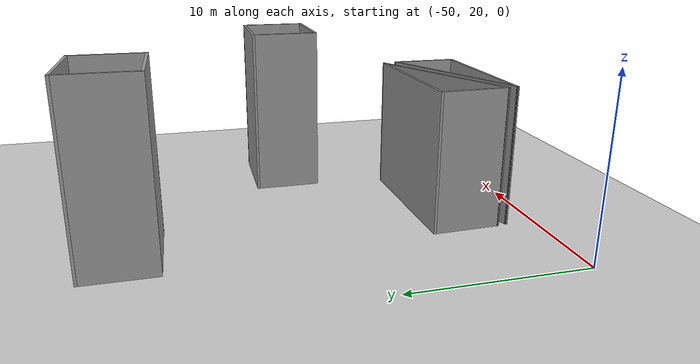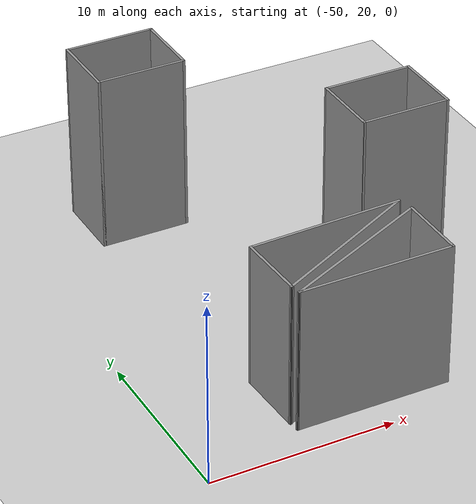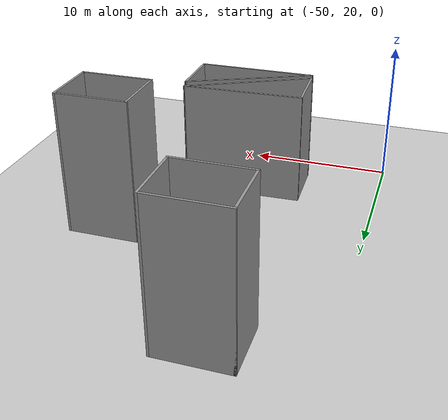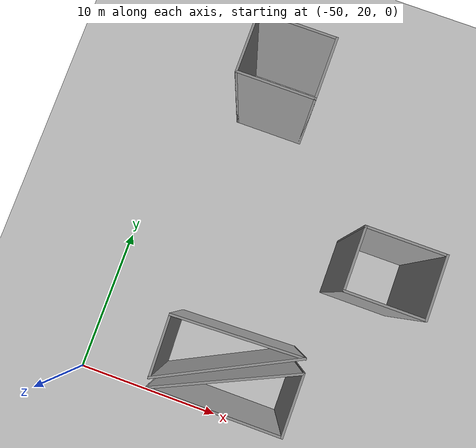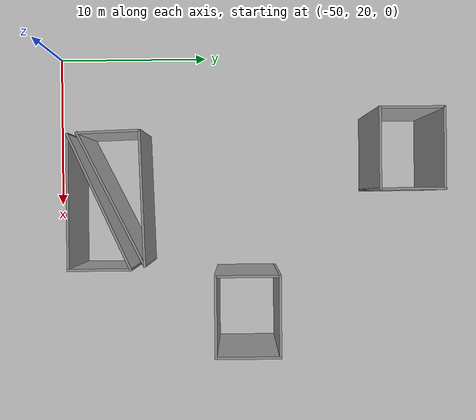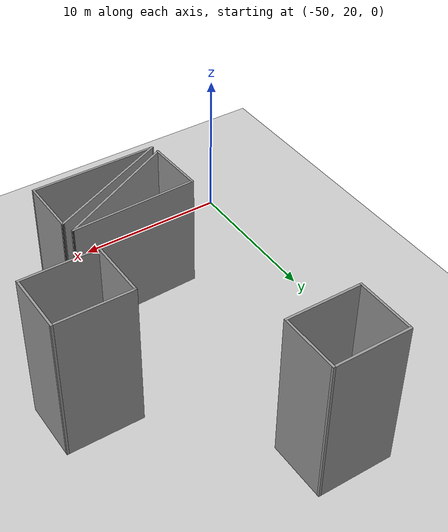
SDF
<sdf version="1.7">
 <world name="default">
  <model name="ground_plane">
   <static>1</static>
   <link name="link">
    <collision name="collision">
     <geometry><plane><normal>0 0 1</normal><size>100 100</size></plane></geometry>
     <surface><friction><ode><mu>100</mu><mu2>50</mu2></ode></friction></surface>
    </collision>
    <visual name="visual">
     <cast_shadows>0</cast_shadows>
     <geometry><plane><normal>0 0 1</normal><size>100 100</size></plane></geometry>
     <material>
      <script><uri>file://media/materials/scripts/gazebo.material</uri><name>Gazebo/Grey</name></script>
     </material>
    </visual>
   </link>
  </model>
  <model name="building2_clone_0">
   <link name="Wall_20">
    <pose>4.175 -1.60474 0 0 0 -1.5708</pose>
    <inertial>
     <mass>1</mass>
     <inertia><ixx>1</ixx><ixy>0</ixy><ixz>0</ixz><iyy>1</iyy><iyz>0</iyz><izz>1</izz></inertia>
    </inertial>
    <visual name="Wall_20_Visual">
     <pose>0 0 4 0 -0 0</pose>
     <geometry><box><size>4 0.15 8</size></box></geometry>
     <material>
      <script><uri>file://media/materials/scripts/gazebo.material</uri><name>Gazebo/Grey</name></script>
      <ambient>0.5 0.5 0.5 1</ambient>
      <shader type="pixel"><normal_map>__default__</normal_map></shader>
      <diffuse>0.5 0.5 0.5 1</diffuse>
      <specular>0.5 0.01 0.5 1</specular>
      <emissive>0 0 0 1</emissive>
     </material>
     <meta><layer>0</layer></meta>
    </visual>
    <collision name="Wall_20_Collision">
     <pose>0 0 4 0 -0 0</pose>
     <geometry><box><size>4 0.15 8</size></box></geometry>
     <surface>
      <friction>
       <ode><mu>1</mu><mu2>1</mu2><fdir1>0 0 0</fdir1><slip1>0</slip1><slip2>0</slip2></ode>
       <torsional>
        <coefficient>1</coefficient>
        <patch_radius>0</patch_radius>
        <surface_radius>0</surface_radius>
        <use_patch_radius>1</use_patch_radius>
        <ode><slip>0</slip></ode>
       </torsional>
      </friction>
      <bounce><restitution_coefficient>0</restitution_coefficient><threshold>1e+06</threshold></bounce>
      <contact>
       <collide_without_contact>0</collide_without_contact>
       <collide_without_contact_bitmask>1</collide_without_contact_bitmask>
       <collide_bitmask>1</collide_bitmask>
       <ode>
        <soft_cfm>0</soft_cfm>
        <soft_erp>0.2</soft_erp>
        <kp>1e+13</kp>
        <kd>1</kd>
        <max_vel>0.01</max_vel>
        <min_depth>0</min_depth>
       </ode>
       <bullet>
        <split_impulse>1</split_impulse>
        <split_impulse_penetration_threshold>-0.01</split_impulse_penetration_threshold>
        <soft_cfm>0</soft_cfm>
        <soft_erp>0.2</soft_erp>
        <kp>1e+13</kp>
        <kd>1</kd>
       </bullet>
      </contact>
     </surface>
    </collision>
   </link>
   <link name="Wall_21">
    <pose>0 -3.52974 0 0 -0 3.14159</pose>
    <inertial>
     <mass>1</mass>
     <inertia><ixx>1</ixx><ixy>0</ixy><ixz>0</ixz><iyy>1</iyy><iyz>0</iyz><izz>1</izz></inertia>
    </inertial>
    <visual name="Wall_21_Visual">
     <pose>0 0 4 0 -0 0</pose>
     <geometry><box><size>8.5 0.15 8</size></box></geometry>
     <material>
      <script><uri>file://media/materials/scripts/gazebo.material</uri><name>Gazebo/Grey</name></script>
      <ambient>0.5 0.5 0.5 1</ambient>
      <shader type="pixel"><normal_map>__default__</normal_map></shader>
      <diffuse>0.5 0.5 0.5 1</diffuse>
      <specular>0.5 0.5 0.5 1</specular>
      <emissive>0 0 0 1</emissive>
     </material>
     <meta><layer>0</layer></meta>
    </visual>
    <collision name="Wall_21_Collision">
     <pose>0 0 4 0 -0 0</pose>
     <geometry><box><size>8.5 0.15 8</size></box></geometry>
     <surface>
      <friction>
       <ode><mu>1</mu><mu2>1</mu2><fdir1>0 0 0</fdir1><slip1>0</slip1><slip2>0</slip2></ode>
       <torsional>
        <coefficient>1</coefficient>
        <patch_radius>0</patch_radius>
        <surface_radius>0</surface_radius>
        <use_patch_radius>1</use_patch_radius>
        <ode><slip>0</slip></ode>
       </torsional>
      </friction>
      <bounce><restitution_coefficient>0</restitution_coefficient><threshold>1e+06</threshold></bounce>
      <contact>
       <collide_without_contact>0</collide_without_contact>
       <collide_without_contact_bitmask>1</collide_without_contact_bitmask>
       <collide_bitmask>1</collide_bitmask>
       <ode>
        <soft_cfm>0</soft_cfm>
        <soft_erp>0.2</soft_erp>
        <kp>1e+13</kp>
        <kd>1</kd>
        <max_vel>0.01</max_vel>
        <min_depth>0</min_depth>
       </ode>
       <bullet>
        <split_impulse>1</split_impulse>
        <split_impulse_penetration_threshold>-0.01</split_impulse_penetration_threshold>
        <soft_cfm>0</soft_cfm>
        <soft_erp>0.2</soft_erp>
        <kp>1e+13</kp>
        <kd>1</kd>
       </bullet>
      </contact>
     </surface>
    </collision>
   </link>
   <link name="Wall_24">
    <pose>0 -1.60474 0 0 -0 0.432028</pose>
    <inertial>
     <mass>1</mass>
     <inertia><ixx>1</ixx><ixy>0</ixy><ixz>0</ixz><iyy>1</iyy><iyz>0</iyz><izz>1</izz></inertia>
    </inertial>
    <visual name="Wall_24_Visual">
     <pose>0 0 4 0 -0 0</pose>
     <geometry><box><size>9.34484 0.15 8</size></box></geometry>
     <material>
      <script><uri>file://media/materials/scripts/gazebo.material</uri><name>Gazebo/Grey</name></script>
      <ambient>0.5 0.5 0.5 1</ambient>
      <shader type="pixel"><normal_map>__default__</normal_map></shader>
      <diffuse>0.5 0.5 0.5 1</diffuse>
      <specular>0.5 0.5 0.5 1</specular>
      <emissive>0 0 0 1</emissive>
     </material>
     <meta><layer>0</layer></meta>
    </visual>
    <collision name="Wall_24_Collision">
     <pose>0 0 4 0 -0 0</pose>
     <geometry><box><size>9.34484 0.15 8</size></box></geometry>
     <surface>
      <friction>
       <ode><mu>1</mu><mu2>1</mu2><fdir1>0 0 0</fdir1><slip1>0</slip1><slip2>0</slip2></ode>
       <torsional>
        <coefficient>1</coefficient>
        <patch_radius>0</patch_radius>
        <surface_radius>0</surface_radius>
        <use_patch_radius>1</use_patch_radius>
        <ode><slip>0</slip></ode>
       </torsional>
      </friction>
      <bounce><restitution_coefficient>0</restitution_coefficient><threshold>1e+06</threshold></bounce>
      <contact>
       <collide_without_contact>0</collide_without_contact>
       <collide_without_contact_bitmask>1</collide_without_contact_bitmask>
       <collide_bitmask>1</collide_bitmask>
       <ode>
        <soft_cfm>0</soft_cfm>
        <soft_erp>0.2</soft_erp>
        <kp>1e+13</kp>
        <kd>1</kd>
        <max_vel>0.01</max_vel>
        <min_depth>0</min_depth>
       </ode>
       <bullet>
        <split_impulse>1</split_impulse>
        <split_impulse_penetration_threshold>-0.01</split_impulse_penetration_threshold>
        <soft_cfm>0</soft_cfm>
        <soft_erp>0.2</soft_erp>
        <kp>1e+13</kp>
        <kd>1</kd>
       </bullet>
      </contact>
     </surface>
    </collision>
   </link>
   <static>1</static>
   <pose>-40.1635 25.222 0 0 -0 0</pose>
  </model>
  <model name="building2_clone_0_clone_0">
   <link name="Wall_20">
    <pose>4.175 -1.60474 0 0 0 -1.5708</pose>
    <inertial>
     <mass>1</mass>
     <inertia><ixx>1</ixx><ixy>0</ixy><ixz>0</ixz><iyy>1</iyy><iyz>0</iyz><izz>1</izz></inertia>
    </inertial>
    <visual name="Wall_20_Visual">
     <pose>0 0 4 0 -0 0</pose>
     <geometry><box><size>4 0.15 8</size></box></geometry>
     <material>
      <script><uri>file://media/materials/scripts/gazebo.material</uri><name>Gazebo/Grey</name></script>
      <ambient>0.5 0.5 0.5 1</ambient>
      <shader type="pixel"><normal_map>__default__</normal_map></shader>
      <diffuse>0.5 0.5 0.5 1</diffuse>
      <specular>0.5 0.01 0.5 1</specular>
      <emissive>0 0 0 1</emissive>
     </material>
     <meta><layer>0</layer></meta>
    </visual>
    <collision name="Wall_20_Collision">
     <pose>0 0 4 0 -0 0</pose>
     <geometry><box><size>4 0.15 8</size></box></geometry>
     <surface>
      <friction>
       <ode><mu>1</mu><mu2>1</mu2><fdir1>0 0 0</fdir1><slip1>0</slip1><slip2>0</slip2></ode>
       <torsional>
        <coefficient>1</coefficient>
        <patch_radius>0</patch_radius>
        <surface_radius>0</surface_radius>
        <use_patch_radius>1</use_patch_radius>
        <ode><slip>0</slip></ode>
       </torsional>
      </friction>
      <bounce><restitution_coefficient>0</restitution_coefficient><threshold>1e+06</threshold></bounce>
      <contact>
       <collide_without_contact>0</collide_without_contact>
       <collide_without_contact_bitmask>1</collide_without_contact_bitmask>
       <collide_bitmask>1</collide_bitmask>
       <ode>
        <soft_cfm>0</soft_cfm>
        <soft_erp>0.2</soft_erp>
        <kp>1e+13</kp>
        <kd>1</kd>
        <max_vel>0.01</max_vel>
        <min_depth>0</min_depth>
       </ode>
       <bullet>
        <split_impulse>1</split_impulse>
        <split_impulse_penetration_threshold>-0.01</split_impulse_penetration_threshold>
        <soft_cfm>0</soft_cfm>
        <soft_erp>0.2</soft_erp>
        <kp>1e+13</kp>
        <kd>1</kd>
       </bullet>
      </contact>
     </surface>
    </collision>
   </link>
   <link name="Wall_21">
    <pose>0 -3.52974 0 0 -0 3.14159</pose>
    <inertial>
     <mass>1</mass>
     <inertia><ixx>1</ixx><ixy>0</ixy><ixz>0</ixz><iyy>1</iyy><iyz>0</iyz><izz>1</izz></inertia>
    </inertial>
    <visual name="Wall_21_Visual">
     <pose>0 0 4 0 -0 0</pose>
     <geometry><box><size>8.5 0.15 8</size></box></geometry>
     <material>
      <script><uri>file://media/materials/scripts/gazebo.material</uri><name>Gazebo/Grey</name></script>
      <ambient>0.5 0.5 0.5 1</ambient>
      <shader type="pixel"><normal_map>__default__</normal_map></shader>
      <diffuse>0.5 0.5 0.5 1</diffuse>
      <specular>0.5 0.5 0.5 1</specular>
      <emissive>0 0 0 1</emissive>
     </material>
     <meta><layer>0</layer></meta>
    </visual>
    <collision name="Wall_21_Collision">
     <pose>0 0 4 0 -0 0</pose>
     <geometry><box><size>8.5 0.15 8</size></box></geometry>
     <surface>
      <friction>
       <ode><mu>1</mu><mu2>1</mu2><fdir1>0 0 0</fdir1><slip1>0</slip1><slip2>0</slip2></ode>
       <torsional>
        <coefficient>1</coefficient>
        <patch_radius>0</patch_radius>
        <surface_radius>0</surface_radius>
        <use_patch_radius>1</use_patch_radius>
        <ode><slip>0</slip></ode>
       </torsional>
      </friction>
      <bounce><restitution_coefficient>0</restitution_coefficient><threshold>1e+06</threshold></bounce>
      <contact>
       <collide_without_contact>0</collide_without_contact>
       <collide_without_contact_bitmask>1</collide_without_contact_bitmask>
       <collide_bitmask>1</collide_bitmask>
       <ode>
        <soft_cfm>0</soft_cfm>
        <soft_erp>0.2</soft_erp>
        <kp>1e+13</kp>
        <kd>1</kd>
        <max_vel>0.01</max_vel>
        <min_depth>0</min_depth>
       </ode>
       <bullet>
        <split_impulse>1</split_impulse>
        <split_impulse_penetration_threshold>-0.01</split_impulse_penetration_threshold>
        <soft_cfm>0</soft_cfm>
        <soft_erp>0.2</soft_erp>
        <kp>1e+13</kp>
        <kd>1</kd>
       </bullet>
      </contact>
     </surface>
    </collision>
   </link>
   <link name="Wall_24">
    <pose>0 -1.60474 0 0 -0 0.432028</pose>
    <inertial>
     <mass>1</mass>
     <inertia><ixx>1</ixx><ixy>0</ixy><ixz>0</ixz><iyy>1</iyy><iyz>0</iyz><izz>1</izz></inertia>
    </inertial>
    <visual name="Wall_24_Visual">
     <pose>0 0 4 0 -0 0</pose>
     <geometry><box><size>9.34484 0.15 8</size></box></geometry>
     <material>
      <script><uri>file://media/materials/scripts/gazebo.material</uri><name>Gazebo/Grey</name></script>
      <ambient>0.5 0.5 0.5 1</ambient>
      <shader type="pixel"><normal_map>__default__</normal_map></shader>
      <diffuse>0.5 0.5 0.5 1</diffuse>
      <specular>0.5 0.5 0.5 1</specular>
      <emissive>0 0 0 1</emissive>
     </material>
     <meta><layer>0</layer></meta>
    </visual>
    <collision name="Wall_24_Collision">
     <pose>0 0 4 0 -0 0</pose>
     <geometry><box><size>9.34484 0.15 8</size></box></geometry>
     <surface>
      <friction>
       <ode><mu>1</mu><mu2>1</mu2><fdir1>0 0 0</fdir1><slip1>0</slip1><slip2>0</slip2></ode>
       <torsional>
        <coefficient>1</coefficient>
        <patch_radius>0</patch_radius>
        <surface_radius>0</surface_radius>
        <use_patch_radius>1</use_patch_radius>
        <ode><slip>0</slip></ode>
       </torsional>
      </friction>
      <bounce><restitution_coefficient>0</restitution_coefficient><threshold>1e+06</threshold></bounce>
      <contact>
       <collide_without_contact>0</collide_without_contact>
       <collide_without_contact_bitmask>1</collide_without_contact_bitmask>
       <collide_bitmask>1</collide_bitmask>
       <ode>
        <soft_cfm>0</soft_cfm>
        <soft_erp>0.2</soft_erp>
        <kp>1e+13</kp>
        <kd>1</kd>
        <max_vel>0.01</max_vel>
        <min_depth>0</min_depth>
       </ode>
       <bullet>
        <split_impulse>1</split_impulse>
        <split_impulse_penetration_threshold>-0.01</split_impulse_penetration_threshold>
        <soft_cfm>0</soft_cfm>
        <soft_erp>0.2</soft_erp>
        <kp>1e+13</kp>
        <kd>1</kd>
       </bullet>
      </contact>
     </surface>
    </collision>
   </link>
   <static>1</static>
   <pose>-40.2686 22.7283 0 0 -0 -3.10808</pose>
  </model>
  <model name="building1_clone_0_clone_4">
   <link name="Wall_12">
    <pose>-1.19 -3.2645 0 0 -0 0</pose>
    <inertial>
     <mass>1</mass>
     <inertia><ixx>1</ixx><ixy>0</ixy><ixz>0</ixz><iyy>1</iyy><iyz>0</iyz><izz>1</izz></inertia>
    </inertial>
    <visual name="Wall_12_Visual">
     <pose>0 0 5 0 -0 0</pose>
     <geometry><box><size>5 0.15 10</size></box></geometry>
     <material>
      <script><uri>file://media/materials/scripts/gazebo.material</uri><name>Gazebo/Grey</name></script>
      <ambient>0.5 0.5 0.5 1</ambient>
      <shader type="pixel"><normal_map>__default__</normal_map></shader>
      <diffuse>0.5 0.5 0.5 1</diffuse>
      <specular>0.5 0.5 0.5 1</specular>
      <emissive>0 0 0 1</emissive>
     </material>
     <meta><layer>0</layer></meta>
    </visual>
    <collision name="Wall_12_Collision">
     <pose>0 0 5 0 -0 0</pose>
     <geometry><box><size>5 0.15 10</size></box></geometry>
     <surface>
      <friction>
       <ode><mu>1</mu><mu2>1</mu2><fdir1>0 0 0</fdir1><slip1>0</slip1><slip2>0</slip2></ode>
       <torsional>
        <coefficient>1</coefficient>
        <patch_radius>0</patch_radius>
        <surface_radius>0</surface_radius>
        <use_patch_radius>1</use_patch_radius>
        <ode><slip>0</slip></ode>
       </torsional>
      </friction>
      <bounce><restitution_coefficient>0</restitution_coefficient><threshold>1e+06</threshold></bounce>
      <contact>
       <collide_without_contact>0</collide_without_contact>
       <collide_without_contact_bitmask>1</collide_without_contact_bitmask>
       <collide_bitmask>1</collide_bitmask>
       <ode>
        <soft_cfm>0</soft_cfm>
        <soft_erp>0.2</soft_erp>
        <kp>1e+13</kp>
        <kd>1</kd>
        <max_vel>0.01</max_vel>
        <min_depth>0</min_depth>
       </ode>
       <bullet>
        <split_impulse>1</split_impulse>
        <split_impulse_penetration_threshold>-0.01</split_impulse_penetration_threshold>
        <soft_cfm>0</soft_cfm>
        <soft_erp>0.2</soft_erp>
        <kp>1e+13</kp>
        <kd>1</kd>
       </bullet>
      </contact>
     </surface>
    </collision>
   </link>
   <link name="Wall_13">
    <pose>1.235 -1.3395 0 0 -0 1.5708</pose>
    <inertial>
     <mass>1</mass>
     <inertia><ixx>1</ixx><ixy>0</ixy><ixz>0</ixz><iyy>1</iyy><iyz>0</iyz><izz>1</izz></inertia>
    </inertial>
    <visual name="Wall_13_Visual">
     <pose>0 0 5 0 -0 0</pose>
     <geometry><box><size>4 0.15 10</size></box></geometry>
     <material>
      <script><uri>file://media/materials/scripts/gazebo.material</uri><name>Gazebo/Grey</name></script>
      <ambient>0.5 0.5 0.5 1</ambient>
      <shader type="pixel"><normal_map>__default__</normal_map></shader>
      <diffuse>0.5 0.5 0.5 1</diffuse>
      <specular>0.5 0.5 0.5 1</specular>
      <emissive>0 0 0 1</emissive>
     </material>
     <meta><layer>0</layer></meta>
    </visual>
    <collision name="Wall_13_Collision">
     <pose>0 0 5 0 -0 0</pose>
     <geometry><box><size>4 0.15 10</size></box></geometry>
     <surface>
      <friction>
       <ode><mu>1</mu><mu2>1</mu2><fdir1>0 0 0</fdir1><slip1>0</slip1><slip2>0</slip2></ode>
       <torsional>
        <coefficient>1</coefficient>
        <patch_radius>0</patch_radius>
        <surface_radius>0</surface_radius>
        <use_patch_radius>1</use_patch_radius>
        <ode><slip>0</slip></ode>
       </torsional>
      </friction>
      <bounce><restitution_coefficient>0</restitution_coefficient><threshold>1e+06</threshold></bounce>
      <contact>
       <collide_without_contact>0</collide_without_contact>
       <collide_without_contact_bitmask>1</collide_without_contact_bitmask>
       <collide_bitmask>1</collide_bitmask>
       <ode>
        <soft_cfm>0</soft_cfm>
        <soft_erp>0.2</soft_erp>
        <kp>1e+13</kp>
        <kd>1</kd>
        <max_vel>0.01</max_vel>
        <min_depth>0</min_depth>
       </ode>
       <bullet>
        <split_impulse>1</split_impulse>
        <split_impulse_penetration_threshold>-0.01</split_impulse_penetration_threshold>
        <soft_cfm>0</soft_cfm>
        <soft_erp>0.2</soft_erp>
        <kp>1e+13</kp>
        <kd>1</kd>
       </bullet>
      </contact>
     </surface>
    </collision>
   </link>
   <link name="Wall_15">
    <pose>-1.19 0.5855 0 0 -0 3.14159</pose>
    <inertial>
     <mass>1</mass>
     <inertia><ixx>1</ixx><ixy>0</ixy><ixz>0</ixz><iyy>1</iyy><iyz>0</iyz><izz>1</izz></inertia>
    </inertial>
    <visual name="Wall_15_Visual">
     <pose>0 0 5 0 -0 0</pose>
     <geometry><box><size>5 0.15 10</size></box></geometry>
     <material>
      <script><uri>file://media/materials/scripts/gazebo.material</uri><name>Gazebo/Grey</name></script>
      <ambient>0.5 0.5 0.5 1</ambient>
      <shader type="pixel"><normal_map>__default__</normal_map></shader>
      <diffuse>0.5 0.5 0.5 1</diffuse>
      <specular>0.5 0.5 0.5 1</specular>
      <emissive>0 0 0 1</emissive>
     </material>
     <meta><layer>0</layer></meta>
    </visual>
    <collision name="Wall_15_Collision">
     <pose>0 0 5 0 -0 0</pose>
     <geometry><box><size>5 0.15 10</size></box></geometry>
     <surface>
      <friction>
       <ode><mu>1</mu><mu2>1</mu2><fdir1>0 0 0</fdir1><slip1>0</slip1><slip2>0</slip2></ode>
       <torsional>
        <coefficient>1</coefficient>
        <patch_radius>0</patch_radius>
        <surface_radius>0</surface_radius>
        <use_patch_radius>1</use_patch_radius>
        <ode><slip>0</slip></ode>
       </torsional>
      </friction>
      <bounce><restitution_coefficient>0</restitution_coefficient><threshold>1e+06</threshold></bounce>
      <contact>
       <collide_without_contact>0</collide_without_contact>
       <collide_without_contact_bitmask>1</collide_without_contact_bitmask>
       <collide_bitmask>1</collide_bitmask>
       <ode>
        <soft_cfm>0</soft_cfm>
        <soft_erp>0.2</soft_erp>
        <kp>1e+13</kp>
        <kd>1</kd>
        <max_vel>0.01</max_vel>
        <min_depth>0</min_depth>
       </ode>
       <bullet>
        <split_impulse>1</split_impulse>
        <split_impulse_penetration_threshold>-0.01</split_impulse_penetration_threshold>
        <soft_cfm>0</soft_cfm>
        <soft_erp>0.2</soft_erp>
        <kp>1e+13</kp>
        <kd>1</kd>
       </bullet>
      </contact>
     </surface>
    </collision>
   </link>
   <link name="Wall_16">
    <pose>-3.615 -1.3395 0 0 0 -1.5708</pose>
    <inertial>
     <mass>1</mass>
     <inertia><ixx>1</ixx><ixy>0</ixy><ixz>0</ixz><iyy>1</iyy><iyz>0</iyz><izz>1</izz></inertia>
    </inertial>
    <visual name="Wall_16_Visual">
     <pose>0 0 5 0 -0 0</pose>
     <geometry><box><size>4 0.15 10</size></box></geometry>
     <material>
      <script><uri>file://media/materials/scripts/gazebo.material</uri><name>Gazebo/Grey</name></script>
      <ambient>0.5 0.5 0.5 1</ambient>
      <shader type="pixel"><normal_map>__default__</normal_map></shader>
      <diffuse>0.5 0.5 0.5 1</diffuse>
      <specular>0.5 0.5 0.5 1</specular>
      <emissive>0 0 0 1</emissive>
     </material>
     <meta><layer>0</layer></meta>
    </visual>
    <collision name="Wall_16_Collision">
     <pose>0 0 5 0 -0 0</pose>
     <geometry><box><size>4 0.15 10</size></box></geometry>
     <surface>
      <friction>
       <ode><mu>1</mu><mu2>1</mu2><fdir1>0 0 0</fdir1><slip1>0</slip1><slip2>0</slip2></ode>
       <torsional>
        <coefficient>1</coefficient>
        <patch_radius>0</patch_radius>
        <surface_radius>0</surface_radius>
        <use_patch_radius>1</use_patch_radius>
        <ode><slip>0</slip></ode>
       </torsional>
      </friction>
      <bounce><restitution_coefficient>0</restitution_coefficient><threshold>1e+06</threshold></bounce>
      <contact>
       <collide_without_contact>0</collide_without_contact>
       <collide_without_contact_bitmask>1</collide_without_contact_bitmask>
       <collide_bitmask>1</collide_bitmask>
       <ode>
        <soft_cfm>0</soft_cfm>
        <soft_erp>0.2</soft_erp>
        <kp>1e+13</kp>
        <kd>1</kd>
        <max_vel>0.01</max_vel>
        <min_depth>0</min_depth>
       </ode>
       <bullet>
        <split_impulse>1</split_impulse>
        <split_impulse_penetration_threshold>-0.01</split_impulse_penetration_threshold>
        <soft_cfm>0</soft_cfm>
        <soft_erp>0.2</soft_erp>
        <kp>1e+13</kp>
        <kd>1</kd>
       </bullet>
      </contact>
     </surface>
    </collision>
   </link>
   <static>1</static>
   <pose>-32.0624 34.0595 0 0 -0 0</pose>
  </model>
  <model name="building1_clone_0_clone">
   <link name="Wall_12">
    <pose>-1.19 -3.2645 0 0 -0 0</pose>
    <inertial>
     <mass>1</mass>
     <inertia><ixx>1</ixx><ixy>0</ixy><ixz>0</ixz><iyy>1</iyy><iyz>0</iyz><izz>1</izz></inertia>
    </inertial>
    <visual name="Wall_12_Visual">
     <pose>0 0 5 0 -0 0</pose>
     <geometry><box><size>5 0.15 10</size></box></geometry>
     <material>
      <script><uri>file://media/materials/scripts/gazebo.material</uri><name>Gazebo/Grey</name></script>
      <ambient>0.5 0.5 0.5 1</ambient>
      <shader type="pixel"><normal_map>__default__</normal_map></shader>
      <diffuse>0.5 0.5 0.5 1</diffuse>
      <specular>0.5 0.5 0.5 1</specular>
      <emissive>0 0 0 1</emissive>
     </material>
     <meta><layer>0</layer></meta>
    </visual>
    <collision name="Wall_12_Collision">
     <pose>0 0 5 0 -0 0</pose>
     <geometry><box><size>5 0.15 10</size></box></geometry>
     <surface>
      <friction>
       <ode><mu>1</mu><mu2>1</mu2><fdir1>0 0 0</fdir1><slip1>0</slip1><slip2>0</slip2></ode>
       <torsional>
        <coefficient>1</coefficient>
        <patch_radius>0</patch_radius>
        <surface_radius>0</surface_radius>
        <use_patch_radius>1</use_patch_radius>
        <ode><slip>0</slip></ode>
       </torsional>
      </friction>
      <bounce><restitution_coefficient>0</restitution_coefficient><threshold>1e+06</threshold></bounce>
      <contact>
       <collide_without_contact>0</collide_without_contact>
       <collide_without_contact_bitmask>1</collide_without_contact_bitmask>
       <collide_bitmask>1</collide_bitmask>
       <ode>
        <soft_cfm>0</soft_cfm>
        <soft_erp>0.2</soft_erp>
        <kp>1e+13</kp>
        <kd>1</kd>
        <max_vel>0.01</max_vel>
        <min_depth>0</min_depth>
       </ode>
       <bullet>
        <split_impulse>1</split_impulse>
        <split_impulse_penetration_threshold>-0.01</split_impulse_penetration_threshold>
        <soft_cfm>0</soft_cfm>
        <soft_erp>0.2</soft_erp>
        <kp>1e+13</kp>
        <kd>1</kd>
       </bullet>
      </contact>
     </surface>
    </collision>
   </link>
   <link name="Wall_13">
    <pose>1.235 -1.3395 0 0 -0 1.5708</pose>
    <inertial>
     <mass>1</mass>
     <inertia><ixx>1</ixx><ixy>0</ixy><ixz>0</ixz><iyy>1</iyy><iyz>0</iyz><izz>1</izz></inertia>
    </inertial>
    <visual name="Wall_13_Visual">
     <pose>0 0 5 0 -0 0</pose>
     <geometry><box><size>4 0.15 10</size></box></geometry>
     <material>
      <script><uri>file://media/materials/scripts/gazebo.material</uri><name>Gazebo/Grey</name></script>
      <ambient>0.5 0.5 0.5 1</ambient>
      <shader type="pixel"><normal_map>__default__</normal_map></shader>
      <diffuse>0.5 0.5 0.5 1</diffuse>
      <specular>0.5 0.5 0.5 1</specular>
      <emissive>0 0 0 1</emissive>
     </material>
     <meta><layer>0</layer></meta>
    </visual>
    <collision name="Wall_13_Collision">
     <pose>0 0 5 0 -0 0</pose>
     <geometry><box><size>4 0.15 10</size></box></geometry>
     <surface>
      <friction>
       <ode><mu>1</mu><mu2>1</mu2><fdir1>0 0 0</fdir1><slip1>0</slip1><slip2>0</slip2></ode>
       <torsional>
        <coefficient>1</coefficient>
        <patch_radius>0</patch_radius>
        <surface_radius>0</surface_radius>
        <use_patch_radius>1</use_patch_radius>
        <ode><slip>0</slip></ode>
       </torsional>
      </friction>
      <bounce><restitution_coefficient>0</restitution_coefficient><threshold>1e+06</threshold></bounce>
      <contact>
       <collide_without_contact>0</collide_without_contact>
       <collide_without_contact_bitmask>1</collide_without_contact_bitmask>
       <collide_bitmask>1</collide_bitmask>
       <ode>
        <soft_cfm>0</soft_cfm>
        <soft_erp>0.2</soft_erp>
        <kp>1e+13</kp>
        <kd>1</kd>
        <max_vel>0.01</max_vel>
        <min_depth>0</min_depth>
       </ode>
       <bullet>
        <split_impulse>1</split_impulse>
        <split_impulse_penetration_threshold>-0.01</split_impulse_penetration_threshold>
        <soft_cfm>0</soft_cfm>
        <soft_erp>0.2</soft_erp>
        <kp>1e+13</kp>
        <kd>1</kd>
       </bullet>
      </contact>
     </surface>
    </collision>
   </link>
   <link name="Wall_15">
    <pose>-1.19 0.5855 0 0 -0 3.14159</pose>
    <inertial>
     <mass>1</mass>
     <inertia><ixx>1</ixx><ixy>0</ixy><ixz>0</ixz><iyy>1</iyy><iyz>0</iyz><izz>1</izz></inertia>
    </inertial>
    <visual name="Wall_15_Visual">
     <pose>0 0 5 0 -0 0</pose>
     <geometry><box><size>5 0.15 10</size></box></geometry>
     <material>
      <script><uri>file://media/materials/scripts/gazebo.material</uri><name>Gazebo/Grey</name></script>
      <ambient>0.5 0.5 0.5 1</ambient>
      <shader type="pixel"><normal_map>__default__</normal_map></shader>
      <diffuse>0.5 0.5 0.5 1</diffuse>
      <specular>0.5 0.5 0.5 1</specular>
      <emissive>0 0 0 1</emissive>
     </material>
     <meta><layer>0</layer></meta>
    </visual>
    <collision name="Wall_15_Collision">
     <pose>0 0 5 0 -0 0</pose>
     <geometry><box><size>5 0.15 10</size></box></geometry>
     <surface>
      <friction>
       <ode><mu>1</mu><mu2>1</mu2><fdir1>0 0 0</fdir1><slip1>0</slip1><slip2>0</slip2></ode>
       <torsional>
        <coefficient>1</coefficient>
        <patch_radius>0</patch_radius>
        <surface_radius>0</surface_radius>
        <use_patch_radius>1</use_patch_radius>
        <ode><slip>0</slip></ode>
       </torsional>
      </friction>
      <bounce><restitution_coefficient>0</restitution_coefficient><threshold>1e+06</threshold></bounce>
      <contact>
       <collide_without_contact>0</collide_without_contact>
       <collide_without_contact_bitmask>1</collide_without_contact_bitmask>
       <collide_bitmask>1</collide_bitmask>
       <ode>
        <soft_cfm>0</soft_cfm>
        <soft_erp>0.2</soft_erp>
        <kp>1e+13</kp>
        <kd>1</kd>
        <max_vel>0.01</max_vel>
        <min_depth>0</min_depth>
       </ode>
       <bullet>
        <split_impulse>1</split_impulse>
        <split_impulse_penetration_threshold>-0.01</split_impulse_penetration_threshold>
        <soft_cfm>0</soft_cfm>
        <soft_erp>0.2</soft_erp>
        <kp>1e+13</kp>
        <kd>1</kd>
       </bullet>
      </contact>
     </surface>
    </collision>
   </link>
   <link name="Wall_16">
    <pose>-3.615 -1.3395 0 0 0 -1.5708</pose>
    <inertial>
     <mass>1</mass>
     <inertia><ixx>1</ixx><ixy>0</ixy><ixz>0</ixz><iyy>1</iyy><iyz>0</iyz><izz>1</izz></inertia>
    </inertial>
    <visual name="Wall_16_Visual">
     <pose>0 0 5 0 -0 0</pose>
     <geometry><box><size>4 0.15 10</size></box></geometry>
     <material>
      <script><uri>file://media/materials/scripts/gazebo.material</uri><name>Gazebo/Grey</name></script>
      <ambient>0.5 0.5 0.5 1</ambient>
      <shader type="pixel"><normal_map>__default__</normal_map></shader>
      <diffuse>0.5 0.5 0.5 1</diffuse>
      <specular>0.5 0.5 0.5 1</specular>
      <emissive>0 0 0 1</emissive>
     </material>
     <meta><layer>0</layer></meta>
    </visual>
    <collision name="Wall_16_Collision">
     <pose>0 0 5 0 -0 0</pose>
     <geometry><box><size>4 0.15 10</size></box></geometry>
     <surface>
      <friction>
       <ode><mu>1</mu><mu2>1</mu2><fdir1>0 0 0</fdir1><slip1>0</slip1><slip2>0</slip2></ode>
       <torsional>
        <coefficient>1</coefficient>
        <patch_radius>0</patch_radius>
        <surface_radius>0</surface_radius>
        <use_patch_radius>1</use_patch_radius>
        <ode><slip>0</slip></ode>
       </torsional>
      </friction>
      <bounce><restitution_coefficient>0</restitution_coefficient><threshold>1e+06</threshold></bounce>
      <contact>
       <collide_without_contact>0</collide_without_contact>
       <collide_without_contact_bitmask>1</collide_without_contact_bitmask>
       <collide_bitmask>1</collide_bitmask>
       <ode>
        <soft_cfm>0</soft_cfm>
        <soft_erp>0.2</soft_erp>
        <kp>1e+13</kp>
        <kd>1</kd>
        <max_vel>0.01</max_vel>
        <min_depth>0</min_depth>
       </ode>
       <bullet>
        <split_impulse>1</split_impulse>
        <split_impulse_penetration_threshold>-0.01</split_impulse_penetration_threshold>
        <soft_cfm>0</soft_cfm>
        <soft_erp>0.2</soft_erp>
        <kp>1e+13</kp>
        <kd>1</kd>
       </bullet>
      </contact>
     </surface>
    </collision>
   </link>
   <static>1</static>
   <pose>-42.0522 43.9284 0 0 -0 0</pose>
  </model>
 </world>
</sdf>
